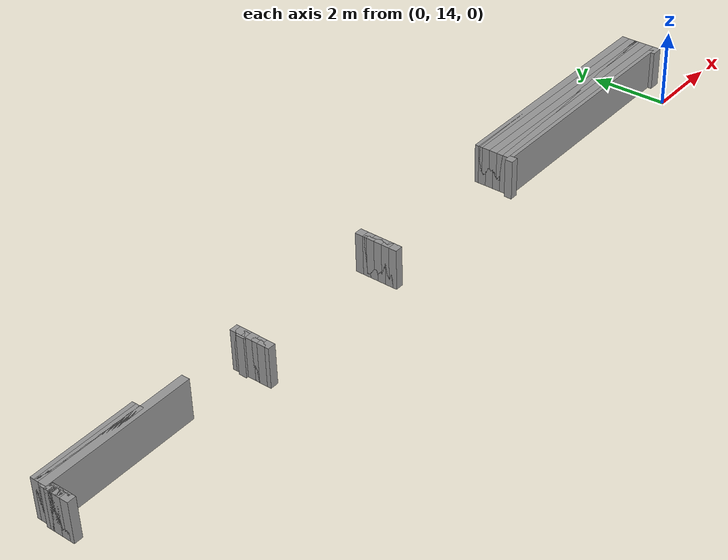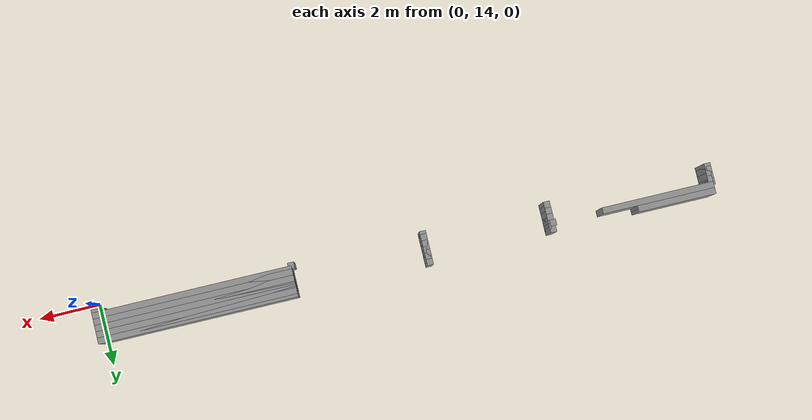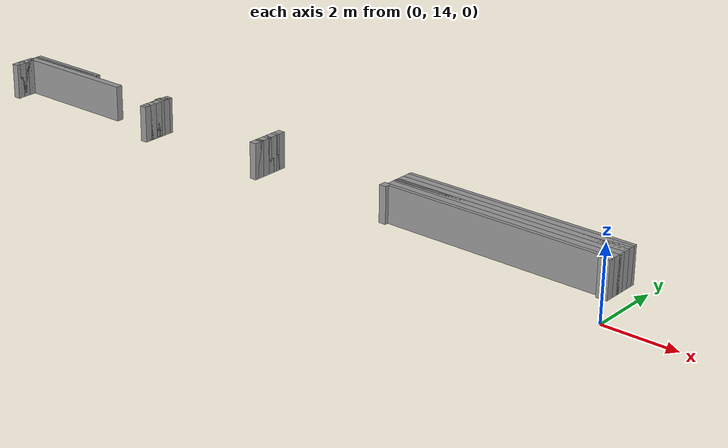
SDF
<sdf version="1.6">
 <world name="GridMap">
  <model name="GridMap">
   <link name="Wall_(1.5,143.0)">
    <collision name="Wall_(1.5,143.0)_Collision">
     <geometry><box><size>0.3 0.2 1.0</size></box></geometry>
     <pose>-0.15 14.3 0.5 0 -0 0</pose>
    </collision>
    <visual name="Wall_(1.5,143.0)_Visual">
     <geometry><box><size>0.3 0.2 1.0</size></box></geometry>
     <pose>-0.15 14.3 0.5 0 -0 0</pose>
     <material>
      <script><uri>file://media/materials/scripts/gazebo.material</uri><name>Gazebo/Grey</name></script>
      <ambient>1 1 1 1</ambient>
     </material>
     <meta><layer>0</layer></meta>
    </visual>
    <pose>0 0 0.5 0 -0 0</pose>
   </link>
   <link name="Wall_(64.0,143.0)">
    <collision name="Wall_(64.0,143.0)_Collision">
     <geometry><box><size>0.2 0.2 1.0</size></box></geometry>
     <pose>-6.4 14.3 0.5 0 -0 0</pose>
    </collision>
    <visual name="Wall_(64.0,143.0)_Visual">
     <geometry><box><size>0.2 0.2 1.0</size></box></geometry>
     <pose>-6.4 14.3 0.5 0 -0 0</pose>
     <material>
      <script><uri>file://media/materials/scripts/gazebo.material</uri><name>Gazebo/Grey</name></script>
      <ambient>1 1 1 1</ambient>
     </material>
     <meta><layer>0</layer></meta>
    </visual>
    <pose>0 0 0.5 0 -0 0</pose>
   </link>
   <link name="Wall_(106.5,143.0)">
    <collision name="Wall_(106.5,143.0)_Collision">
     <geometry><box><size>0.2 0.2 1.0</size></box></geometry>
     <pose>-10.65 14.3 0.5 0 -0 0</pose>
    </collision>
    <visual name="Wall_(106.5,143.0)_Visual">
     <geometry><box><size>0.2 0.2 1.0</size></box></geometry>
     <pose>-10.65 14.3 0.5 0 -0 0</pose>
     <material>
      <script><uri>file://media/materials/scripts/gazebo.material</uri><name>Gazebo/Grey</name></script>
      <ambient>1 1 1 1</ambient>
     </material>
     <meta><layer>0</layer></meta>
    </visual>
    <pose>0 0 0.5 0 -0 0</pose>
   </link>
   <link name="Wall_(146.5,143.0)">
    <collision name="Wall_(146.5,143.0)_Collision">
     <geometry><box><size>0.2 0.2 1.0</size></box></geometry>
     <pose>-14.65 14.3 0.5 0 -0 0</pose>
    </collision>
    <visual name="Wall_(146.5,143.0)_Visual">
     <geometry><box><size>0.2 0.2 1.0</size></box></geometry>
     <pose>-14.65 14.3 0.5 0 -0 0</pose>
     <material>
      <script><uri>file://media/materials/scripts/gazebo.material</uri><name>Gazebo/Grey</name></script>
      <ambient>1 1 1 1</ambient>
     </material>
     <meta><layer>0</layer></meta>
    </visual>
    <pose>0 0 0.5 0 -0 0</pose>
   </link>
   <link name="Wall_(198.5,143.0)">
    <collision name="Wall_(198.5,143.0)_Collision">
     <geometry><box><size>0.2 0.2 1.0</size></box></geometry>
     <pose>-19.85 14.3 0.5 0 -0 0</pose>
    </collision>
    <visual name="Wall_(198.5,143.0)_Visual">
     <geometry><box><size>0.2 0.2 1.0</size></box></geometry>
     <pose>-19.85 14.3 0.5 0 -0 0</pose>
     <material>
      <script><uri>file://media/materials/scripts/gazebo.material</uri><name>Gazebo/Grey</name></script>
      <ambient>1 1 1 1</ambient>
     </material>
     <meta><layer>0</layer></meta>
    </visual>
    <pose>0 0 0.5 0 -0 0</pose>
   </link>
   <link name="Wall_(32.0,144.0)">
    <collision name="Wall_(32.0,144.0)_Collision">
     <geometry><box><size>6.4 0.2 1.0</size></box></geometry>
     <pose>-3.2 14.4 0.5 0 -0 0</pose>
    </collision>
    <visual name="Wall_(32.0,144.0)_Visual">
     <geometry><box><size>6.4 0.2 1.0</size></box></geometry>
     <pose>-3.2 14.4 0.5 0 -0 0</pose>
     <material>
      <script><uri>file://media/materials/scripts/gazebo.material</uri><name>Gazebo/Grey</name></script>
      <ambient>1 1 1 1</ambient>
     </material>
     <meta><layer>0</layer></meta>
    </visual>
    <pose>0 0 0.5 0 -0 0</pose>
   </link>
   <link name="Wall_(106.5,144.0)">
    <collision name="Wall_(106.5,144.0)_Collision">
     <geometry><box><size>0.2 0.2 1.0</size></box></geometry>
     <pose>-10.65 14.4 0.5 0 -0 0</pose>
    </collision>
    <visual name="Wall_(106.5,144.0)_Visual">
     <geometry><box><size>0.2 0.2 1.0</size></box></geometry>
     <pose>-10.65 14.4 0.5 0 -0 0</pose>
     <material>
      <script><uri>file://media/materials/scripts/gazebo.material</uri><name>Gazebo/Grey</name></script>
      <ambient>1 1 1 1</ambient>
     </material>
     <meta><layer>0</layer></meta>
    </visual>
    <pose>0 0 0.5 0 -0 0</pose>
   </link>
   <link name="Wall_(146.5,144.0)">
    <collision name="Wall_(146.5,144.0)_Collision">
     <geometry><box><size>0.2 0.2 1.0</size></box></geometry>
     <pose>-14.65 14.4 0.5 0 -0 0</pose>
    </collision>
    <visual name="Wall_(146.5,144.0)_Visual">
     <geometry><box><size>0.2 0.2 1.0</size></box></geometry>
     <pose>-14.65 14.4 0.5 0 -0 0</pose>
     <material>
      <script><uri>file://media/materials/scripts/gazebo.material</uri><name>Gazebo/Grey</name></script>
      <ambient>1 1 1 1</ambient>
     </material>
     <meta><layer>0</layer></meta>
    </visual>
    <pose>0 0 0.5 0 -0 0</pose>
   </link>
   <link name="Wall_(198.5,144.0)">
    <collision name="Wall_(198.5,144.0)_Collision">
     <geometry><box><size>0.2 0.2 1.0</size></box></geometry>
     <pose>-19.85 14.4 0.5 0 -0 0</pose>
    </collision>
    <visual name="Wall_(198.5,144.0)_Visual">
     <geometry><box><size>0.2 0.2 1.0</size></box></geometry>
     <pose>-19.85 14.4 0.5 0 -0 0</pose>
     <material>
      <script><uri>file://media/materials/scripts/gazebo.material</uri><name>Gazebo/Grey</name></script>
      <ambient>1 1 1 1</ambient>
     </material>
     <meta><layer>0</layer></meta>
    </visual>
    <pose>0 0 0.5 0 -0 0</pose>
   </link>
   <link name="Wall_(32.0,145.0)">
    <collision name="Wall_(32.0,145.0)_Collision">
     <geometry><box><size>6.4 0.2 1.0</size></box></geometry>
     <pose>-3.2 14.5 0.5 0 -0 0</pose>
    </collision>
    <visual name="Wall_(32.0,145.0)_Visual">
     <geometry><box><size>6.4 0.2 1.0</size></box></geometry>
     <pose>-3.2 14.5 0.5 0 -0 0</pose>
     <material>
      <script><uri>file://media/materials/scripts/gazebo.material</uri><name>Gazebo/Grey</name></script>
      <ambient>1 1 1 1</ambient>
     </material>
     <meta><layer>0</layer></meta>
    </visual>
    <pose>0 0 0.5 0 -0 0</pose>
   </link>
   <link name="Wall_(106.5,145.0)">
    <collision name="Wall_(106.5,145.0)_Collision">
     <geometry><box><size>0.2 0.2 1.0</size></box></geometry>
     <pose>-10.65 14.5 0.5 0 -0 0</pose>
    </collision>
    <visual name="Wall_(106.5,145.0)_Visual">
     <geometry><box><size>0.2 0.2 1.0</size></box></geometry>
     <pose>-10.65 14.5 0.5 0 -0 0</pose>
     <material>
      <script><uri>file://media/materials/scripts/gazebo.material</uri><name>Gazebo/Grey</name></script>
      <ambient>1 1 1 1</ambient>
     </material>
     <meta><layer>0</layer></meta>
    </visual>
    <pose>0 0 0.5 0 -0 0</pose>
   </link>
   <link name="Wall_(146.5,145.0)">
    <collision name="Wall_(146.5,145.0)_Collision">
     <geometry><box><size>0.2 0.2 1.0</size></box></geometry>
     <pose>-14.65 14.5 0.5 0 -0 0</pose>
    </collision>
    <visual name="Wall_(146.5,145.0)_Visual">
     <geometry><box><size>0.2 0.2 1.0</size></box></geometry>
     <pose>-14.65 14.5 0.5 0 -0 0</pose>
     <material>
      <script><uri>file://media/materials/scripts/gazebo.material</uri><name>Gazebo/Grey</name></script>
      <ambient>1 1 1 1</ambient>
     </material>
     <meta><layer>0</layer></meta>
    </visual>
    <pose>0 0 0.5 0 -0 0</pose>
   </link>
   <link name="Wall_(198.5,145.0)">
    <collision name="Wall_(198.5,145.0)_Collision">
     <geometry><box><size>0.2 0.2 1.0</size></box></geometry>
     <pose>-19.85 14.5 0.5 0 -0 0</pose>
    </collision>
    <visual name="Wall_(198.5,145.0)_Visual">
     <geometry><box><size>0.2 0.2 1.0</size></box></geometry>
     <pose>-19.85 14.5 0.5 0 -0 0</pose>
     <material>
      <script><uri>file://media/materials/scripts/gazebo.material</uri><name>Gazebo/Grey</name></script>
      <ambient>1 1 1 1</ambient>
     </material>
     <meta><layer>0</layer></meta>
    </visual>
    <pose>0 0 0.5 0 -0 0</pose>
   </link>
   <link name="Wall_(32.0,146.0)">
    <collision name="Wall_(32.0,146.0)_Collision">
     <geometry><box><size>6.4 0.2 1.0</size></box></geometry>
     <pose>-3.2 14.6 0.5 0 -0 0</pose>
    </collision>
    <visual name="Wall_(32.0,146.0)_Visual">
     <geometry><box><size>6.4 0.2 1.0</size></box></geometry>
     <pose>-3.2 14.6 0.5 0 -0 0</pose>
     <material>
      <script><uri>file://media/materials/scripts/gazebo.material</uri><name>Gazebo/Grey</name></script>
      <ambient>1 1 1 1</ambient>
     </material>
     <meta><layer>0</layer></meta>
    </visual>
    <pose>0 0 0.5 0 -0 0</pose>
   </link>
   <link name="Wall_(106.5,146.0)">
    <collision name="Wall_(106.5,146.0)_Collision">
     <geometry><box><size>0.2 0.2 1.0</size></box></geometry>
     <pose>-10.65 14.6 0.5 0 -0 0</pose>
    </collision>
    <visual name="Wall_(106.5,146.0)_Visual">
     <geometry><box><size>0.2 0.2 1.0</size></box></geometry>
     <pose>-10.65 14.6 0.5 0 -0 0</pose>
     <material>
      <script><uri>file://media/materials/scripts/gazebo.material</uri><name>Gazebo/Grey</name></script>
      <ambient>1 1 1 1</ambient>
     </material>
     <meta><layer>0</layer></meta>
    </visual>
    <pose>0 0 0.5 0 -0 0</pose>
   </link>
   <link name="Wall_(146.5,146.0)">
    <collision name="Wall_(146.5,146.0)_Collision">
     <geometry><box><size>0.2 0.2 1.0</size></box></geometry>
     <pose>-14.65 14.6 0.5 0 -0 0</pose>
    </collision>
    <visual name="Wall_(146.5,146.0)_Visual">
     <geometry><box><size>0.2 0.2 1.0</size></box></geometry>
     <pose>-14.65 14.6 0.5 0 -0 0</pose>
     <material>
      <script><uri>file://media/materials/scripts/gazebo.material</uri><name>Gazebo/Grey</name></script>
      <ambient>1 1 1 1</ambient>
     </material>
     <meta><layer>0</layer></meta>
    </visual>
    <pose>0 0 0.5 0 -0 0</pose>
   </link>
   <link name="Wall_(198.5,146.0)">
    <collision name="Wall_(198.5,146.0)_Collision">
     <geometry><box><size>0.2 0.2 1.0</size></box></geometry>
     <pose>-19.85 14.6 0.5 0 -0 0</pose>
    </collision>
    <visual name="Wall_(198.5,146.0)_Visual">
     <geometry><box><size>0.2 0.2 1.0</size></box></geometry>
     <pose>-19.85 14.6 0.5 0 -0 0</pose>
     <material>
      <script><uri>file://media/materials/scripts/gazebo.material</uri><name>Gazebo/Grey</name></script>
      <ambient>1 1 1 1</ambient>
     </material>
     <meta><layer>0</layer></meta>
    </visual>
    <pose>0 0 0.5 0 -0 0</pose>
   </link>
   <link name="Wall_(32.0,147.0)">
    <collision name="Wall_(32.0,147.0)_Collision">
     <geometry><box><size>6.4 0.2 1.0</size></box></geometry>
     <pose>-3.2 14.7 0.5 0 -0 0</pose>
    </collision>
    <visual name="Wall_(32.0,147.0)_Visual">
     <geometry><box><size>6.4 0.2 1.0</size></box></geometry>
     <pose>-3.2 14.7 0.5 0 -0 0</pose>
     <material>
      <script><uri>file://media/materials/scripts/gazebo.material</uri><name>Gazebo/Grey</name></script>
      <ambient>1 1 1 1</ambient>
     </material>
     <meta><layer>0</layer></meta>
    </visual>
    <pose>0 0 0.5 0 -0 0</pose>
   </link>
   <link name="Wall_(106.5,147.0)">
    <collision name="Wall_(106.5,147.0)_Collision">
     <geometry><box><size>0.2 0.2 1.0</size></box></geometry>
     <pose>-10.65 14.7 0.5 0 -0 0</pose>
    </collision>
    <visual name="Wall_(106.5,147.0)_Visual">
     <geometry><box><size>0.2 0.2 1.0</size></box></geometry>
     <pose>-10.65 14.7 0.5 0 -0 0</pose>
     <material>
      <script><uri>file://media/materials/scripts/gazebo.material</uri><name>Gazebo/Grey</name></script>
      <ambient>1 1 1 1</ambient>
     </material>
     <meta><layer>0</layer></meta>
    </visual>
    <pose>0 0 0.5 0 -0 0</pose>
   </link>
   <link name="Wall_(146.5,147.0)">
    <collision name="Wall_(146.5,147.0)_Collision">
     <geometry><box><size>0.2 0.2 1.0</size></box></geometry>
     <pose>-14.65 14.7 0.5 0 -0 0</pose>
    </collision>
    <visual name="Wall_(146.5,147.0)_Visual">
     <geometry><box><size>0.2 0.2 1.0</size></box></geometry>
     <pose>-14.65 14.7 0.5 0 -0 0</pose>
     <material>
      <script><uri>file://media/materials/scripts/gazebo.material</uri><name>Gazebo/Grey</name></script>
      <ambient>1 1 1 1</ambient>
     </material>
     <meta><layer>0</layer></meta>
    </visual>
    <pose>0 0 0.5 0 -0 0</pose>
   </link>
   <link name="Wall_(198.5,147.0)">
    <collision name="Wall_(198.5,147.0)_Collision">
     <geometry><box><size>0.2 0.2 1.0</size></box></geometry>
     <pose>-19.85 14.7 0.5 0 -0 0</pose>
    </collision>
    <visual name="Wall_(198.5,147.0)_Visual">
     <geometry><box><size>0.2 0.2 1.0</size></box></geometry>
     <pose>-19.85 14.7 0.5 0 -0 0</pose>
     <material>
      <script><uri>file://media/materials/scripts/gazebo.material</uri><name>Gazebo/Grey</name></script>
      <ambient>1 1 1 1</ambient>
     </material>
     <meta><layer>0</layer></meta>
    </visual>
    <pose>0 0 0.5 0 -0 0</pose>
   </link>
   <link name="Wall_(32.0,148.0)">
    <collision name="Wall_(32.0,148.0)_Collision">
     <geometry><box><size>6.4 0.2 1.0</size></box></geometry>
     <pose>-3.2 14.8 0.5 0 -0 0</pose>
    </collision>
    <visual name="Wall_(32.0,148.0)_Visual">
     <geometry><box><size>6.4 0.2 1.0</size></box></geometry>
     <pose>-3.2 14.8 0.5 0 -0 0</pose>
     <material>
      <script><uri>file://media/materials/scripts/gazebo.material</uri><name>Gazebo/Grey</name></script>
      <ambient>1 1 1 1</ambient>
     </material>
     <meta><layer>0</layer></meta>
    </visual>
    <pose>0 0 0.5 0 -0 0</pose>
   </link>
   <link name="Wall_(106.5,148.0)">
    <collision name="Wall_(106.5,148.0)_Collision">
     <geometry><box><size>0.2 0.2 1.0</size></box></geometry>
     <pose>-10.65 14.8 0.5 0 -0 0</pose>
    </collision>
    <visual name="Wall_(106.5,148.0)_Visual">
     <geometry><box><size>0.2 0.2 1.0</size></box></geometry>
     <pose>-10.65 14.8 0.5 0 -0 0</pose>
     <material>
      <script><uri>file://media/materials/scripts/gazebo.material</uri><name>Gazebo/Grey</name></script>
      <ambient>1 1 1 1</ambient>
     </material>
     <meta><layer>0</layer></meta>
    </visual>
    <pose>0 0 0.5 0 -0 0</pose>
   </link>
   <link name="Wall_(146.5,148.0)">
    <collision name="Wall_(146.5,148.0)_Collision">
     <geometry><box><size>0.2 0.2 1.0</size></box></geometry>
     <pose>-14.65 14.8 0.5 0 -0 0</pose>
    </collision>
    <visual name="Wall_(146.5,148.0)_Visual">
     <geometry><box><size>0.2 0.2 1.0</size></box></geometry>
     <pose>-14.65 14.8 0.5 0 -0 0</pose>
     <material>
      <script><uri>file://media/materials/scripts/gazebo.material</uri><name>Gazebo/Grey</name></script>
      <ambient>1 1 1 1</ambient>
     </material>
     <meta><layer>0</layer></meta>
    </visual>
    <pose>0 0 0.5 0 -0 0</pose>
   </link>
   <link name="Wall_(198.5,148.0)">
    <collision name="Wall_(198.5,148.0)_Collision">
     <geometry><box><size>0.2 0.2 1.0</size></box></geometry>
     <pose>-19.85 14.8 0.5 0 -0 0</pose>
    </collision>
    <visual name="Wall_(198.5,148.0)_Visual">
     <geometry><box><size>0.2 0.2 1.0</size></box></geometry>
     <pose>-19.85 14.8 0.5 0 -0 0</pose>
     <material>
      <script><uri>file://media/materials/scripts/gazebo.material</uri><name>Gazebo/Grey</name></script>
      <ambient>1 1 1 1</ambient>
     </material>
     <meta><layer>0</layer></meta>
    </visual>
    <pose>0 0 0.5 0 -0 0</pose>
   </link>
   <link name="Wall_(32.0,149.0)">
    <collision name="Wall_(32.0,149.0)_Collision">
     <geometry><box><size>6.4 0.2 1.0</size></box></geometry>
     <pose>-3.2 14.9 0.5 0 -0 0</pose>
    </collision>
    <visual name="Wall_(32.0,149.0)_Visual">
     <geometry><box><size>6.4 0.2 1.0</size></box></geometry>
     <pose>-3.2 14.9 0.5 0 -0 0</pose>
     <material>
      <script><uri>file://media/materials/scripts/gazebo.material</uri><name>Gazebo/Grey</name></script>
      <ambient>1 1 1 1</ambient>
     </material>
     <meta><layer>0</layer></meta>
    </visual>
    <pose>0 0 0.5 0 -0 0</pose>
   </link>
   <link name="Wall_(106.5,149.0)">
    <collision name="Wall_(106.5,149.0)_Collision">
     <geometry><box><size>0.2 0.2 1.0</size></box></geometry>
     <pose>-10.65 14.9 0.5 0 -0 0</pose>
    </collision>
    <visual name="Wall_(106.5,149.0)_Visual">
     <geometry><box><size>0.2 0.2 1.0</size></box></geometry>
     <pose>-10.65 14.9 0.5 0 -0 0</pose>
     <material>
      <script><uri>file://media/materials/scripts/gazebo.material</uri><name>Gazebo/Grey</name></script>
      <ambient>1 1 1 1</ambient>
     </material>
     <meta><layer>0</layer></meta>
    </visual>
    <pose>0 0 0.5 0 -0 0</pose>
   </link>
   <link name="Wall_(147.0,149.0)">
    <collision name="Wall_(147.0,149.0)_Collision">
     <geometry><box><size>0.2 0.2 1.0</size></box></geometry>
     <pose>-14.7 14.9 0.5 0 -0 0</pose>
    </collision>
    <visual name="Wall_(147.0,149.0)_Visual">
     <geometry><box><size>0.2 0.2 1.0</size></box></geometry>
     <pose>-14.7 14.9 0.5 0 -0 0</pose>
     <material>
      <script><uri>file://media/materials/scripts/gazebo.material</uri><name>Gazebo/Grey</name></script>
      <ambient>1 1 1 1</ambient>
     </material>
     <meta><layer>0</layer></meta>
    </visual>
    <pose>0 0 0.5 0 -0 0</pose>
   </link>
   <link name="Wall_(181.0,149.0)">
    <collision name="Wall_(181.0,149.0)_Collision">
     <geometry><box><size>3.6 0.2 1.0</size></box></geometry>
     <pose>-18.1 14.9 0.5 0 -0 0</pose>
    </collision>
    <visual name="Wall_(181.0,149.0)_Visual">
     <geometry><box><size>3.6 0.2 1.0</size></box></geometry>
     <pose>-18.1 14.9 0.5 0 -0 0</pose>
     <material>
      <script><uri>file://media/materials/scripts/gazebo.material</uri><name>Gazebo/Grey</name></script>
      <ambient>1 1 1 1</ambient>
     </material>
     <meta><layer>0</layer></meta>
    </visual>
    <pose>0 0 0.5 0 -0 0</pose>
   </link>
   <link name="Wall_(32.0,150.0)">
    <collision name="Wall_(32.0,150.0)_Collision">
     <geometry><box><size>6.4 0.2 1.0</size></box></geometry>
     <pose>-3.2 15.0 0.5 0 -0 0</pose>
    </collision>
    <visual name="Wall_(32.0,150.0)_Visual">
     <geometry><box><size>6.4 0.2 1.0</size></box></geometry>
     <pose>-3.2 15.0 0.5 0 -0 0</pose>
     <material>
      <script><uri>file://media/materials/scripts/gazebo.material</uri><name>Gazebo/Grey</name></script>
      <ambient>1 1 1 1</ambient>
     </material>
     <meta><layer>0</layer></meta>
    </visual>
    <pose>0 0 0.5 0 -0 0</pose>
   </link>
   <link name="Wall_(106.5,150.0)">
    <collision name="Wall_(106.5,150.0)_Collision">
     <geometry><box><size>0.2 0.2 1.0</size></box></geometry>
     <pose>-10.65 15.0 0.5 0 -0 0</pose>
    </collision>
    <visual name="Wall_(106.5,150.0)_Visual">
     <geometry><box><size>0.2 0.2 1.0</size></box></geometry>
     <pose>-10.65 15.0 0.5 0 -0 0</pose>
     <material>
      <script><uri>file://media/materials/scripts/gazebo.material</uri><name>Gazebo/Grey</name></script>
      <ambient>1 1 1 1</ambient>
     </material>
     <meta><layer>0</layer></meta>
    </visual>
    <pose>0 0 0.5 0 -0 0</pose>
   </link>
   <link name="Wall_(146.5,150.0)">
    <collision name="Wall_(146.5,150.0)_Collision">
     <geometry><box><size>0.2 0.2 1.0</size></box></geometry>
     <pose>-14.65 15.0 0.5 0 -0 0</pose>
    </collision>
    <visual name="Wall_(146.5,150.0)_Visual">
     <geometry><box><size>0.2 0.2 1.0</size></box></geometry>
     <pose>-14.65 15.0 0.5 0 -0 0</pose>
     <material>
      <script><uri>file://media/materials/scripts/gazebo.material</uri><name>Gazebo/Grey</name></script>
      <ambient>1 1 1 1</ambient>
     </material>
     <meta><layer>0</layer></meta>
    </visual>
    <pose>0 0 0.5 0 -0 0</pose>
   </link>
   <link name="Wall_(186.5,150.0)">
    <collision name="Wall_(186.5,150.0)_Collision">
     <geometry><box><size>2.5 0.2 1.0</size></box></geometry>
     <pose>-18.65 15.0 0.5 0 -0 0</pose>
    </collision>
    <visual name="Wall_(186.5,150.0)_Visual">
     <geometry><box><size>2.5 0.2 1.0</size></box></geometry>
     <pose>-18.65 15.0 0.5 0 -0 0</pose>
     <material>
      <script><uri>file://media/materials/scripts/gazebo.material</uri><name>Gazebo/Grey</name></script>
      <ambient>1 1 1 1</ambient>
     </material>
     <meta><layer>0</layer></meta>
    </visual>
    <pose>0 0 0.5 0 -0 0</pose>
   </link>
   <link name="Wall_(32.0,151.0)">
    <collision name="Wall_(32.0,151.0)_Collision">
     <geometry><box><size>6.4 0.2 1.0</size></box></geometry>
     <pose>-3.2 15.1 0.5 0 -0 0</pose>
    </collision>
    <visual name="Wall_(32.0,151.0)_Visual">
     <geometry><box><size>6.4 0.2 1.0</size></box></geometry>
     <pose>-3.2 15.1 0.5 0 -0 0</pose>
     <material>
      <script><uri>file://media/materials/scripts/gazebo.material</uri><name>Gazebo/Grey</name></script>
      <ambient>1 1 1 1</ambient>
     </material>
     <meta><layer>0</layer></meta>
    </visual>
    <pose>0 0 0.5 0 -0 0</pose>
   </link>
   <link name="Wall_(106.5,151.0)">
    <collision name="Wall_(106.5,151.0)_Collision">
     <geometry><box><size>0.2 0.2 1.0</size></box></geometry>
     <pose>-10.65 15.1 0.5 0 -0 0</pose>
    </collision>
    <visual name="Wall_(106.5,151.0)_Visual">
     <geometry><box><size>0.2 0.2 1.0</size></box></geometry>
     <pose>-10.65 15.1 0.5 0 -0 0</pose>
     <material>
      <script><uri>file://media/materials/scripts/gazebo.material</uri><name>Gazebo/Grey</name></script>
      <ambient>1 1 1 1</ambient>
     </material>
     <meta><layer>0</layer></meta>
    </visual>
    <pose>0 0 0.5 0 -0 0</pose>
   </link>
   <link name="Wall_(146.5,151.0)">
    <collision name="Wall_(146.5,151.0)_Collision">
     <geometry><box><size>0.2 0.2 1.0</size></box></geometry>
     <pose>-14.65 15.1 0.5 0 -0 0</pose>
    </collision>
    <visual name="Wall_(146.5,151.0)_Visual">
     <geometry><box><size>0.2 0.2 1.0</size></box></geometry>
     <pose>-14.65 15.1 0.5 0 -0 0</pose>
     <material>
      <script><uri>file://media/materials/scripts/gazebo.material</uri><name>Gazebo/Grey</name></script>
      <ambient>1 1 1 1</ambient>
     </material>
     <meta><layer>0</layer></meta>
    </visual>
    <pose>0 0 0.5 0 -0 0</pose>
   </link>
   <link name="Wall_(186.5,151.0)">
    <collision name="Wall_(186.5,151.0)_Collision">
     <geometry><box><size>2.5 0.2 1.0</size></box></geometry>
     <pose>-18.65 15.1 0.5 0 -0 0</pose>
    </collision>
    <visual name="Wall_(186.5,151.0)_Visual">
     <geometry><box><size>2.5 0.2 1.0</size></box></geometry>
     <pose>-18.65 15.1 0.5 0 -0 0</pose>
     <material>
      <script><uri>file://media/materials/scripts/gazebo.material</uri><name>Gazebo/Grey</name></script>
      <ambient>1 1 1 1</ambient>
     </material>
     <meta><layer>0</layer></meta>
    </visual>
    <pose>0 0 0.5 0 -0 0</pose>
   </link>
   <link name="Wall_(32.0,152.0)">
    <collision name="Wall_(32.0,152.0)_Collision">
     <geometry><box><size>6.4 0.2 1.0</size></box></geometry>
     <pose>-3.2 15.2 0.5 0 -0 0</pose>
    </collision>
    <visual name="Wall_(32.0,152.0)_Visual">
     <geometry><box><size>6.4 0.2 1.0</size></box></geometry>
     <pose>-3.2 15.2 0.5 0 -0 0</pose>
     <material>
      <script><uri>file://media/materials/scripts/gazebo.material</uri><name>Gazebo/Grey</name></script>
      <ambient>1 1 1 1</ambient>
     </material>
     <meta><layer>0</layer></meta>
    </visual>
    <pose>0 0 0.5 0 -0 0</pose>
   </link>
   <link name="Wall_(106.5,152.0)">
    <collision name="Wall_(106.5,152.0)_Collision">
     <geometry><box><size>0.2 0.2 1.0</size></box></geometry>
     <pose>-10.65 15.2 0.5 0 -0 0</pose>
    </collision>
    <visual name="Wall_(106.5,152.0)_Visual">
     <geometry><box><size>0.2 0.2 1.0</size></box></geometry>
     <pose>-10.65 15.2 0.5 0 -0 0</pose>
     <material>
      <script><uri>file://media/materials/scripts/gazebo.material</uri><name>Gazebo/Grey</name></script>
      <ambient>1 1 1 1</ambient>
     </material>
     <meta><layer>0</layer></meta>
    </visual>
    <pose>0 0 0.5 0 -0 0</pose>
   </link>
   <static>1</static>
  </model>
 </world>
</sdf>
